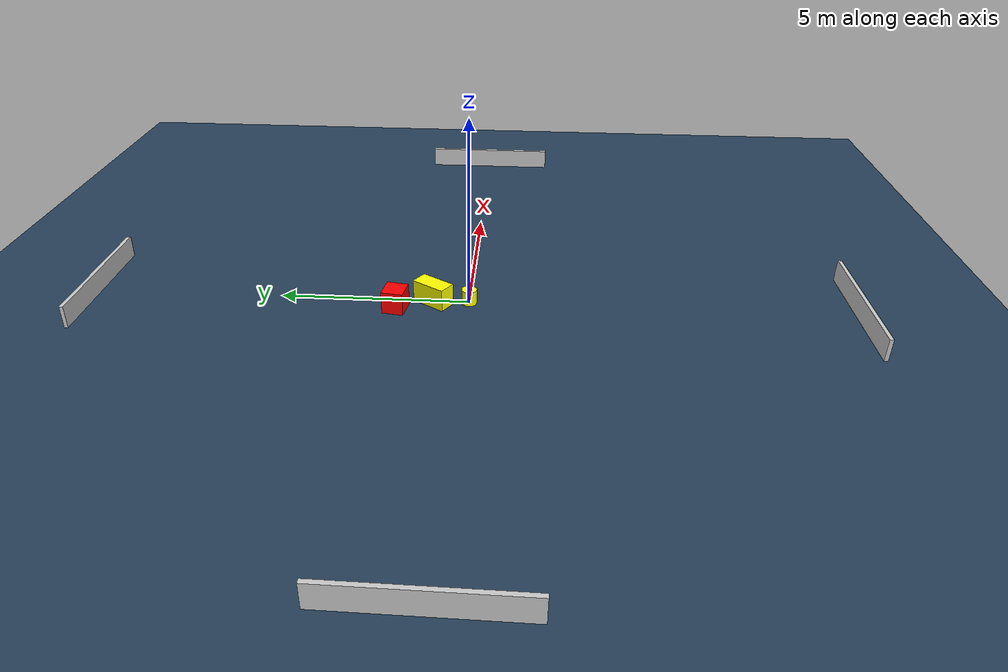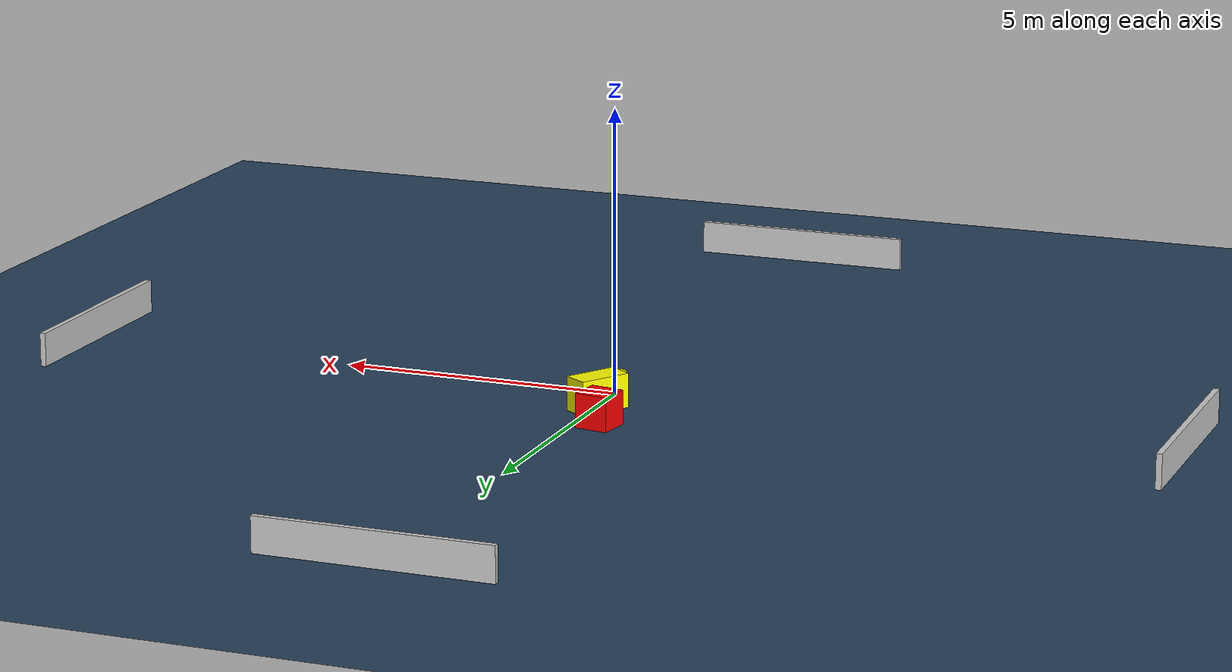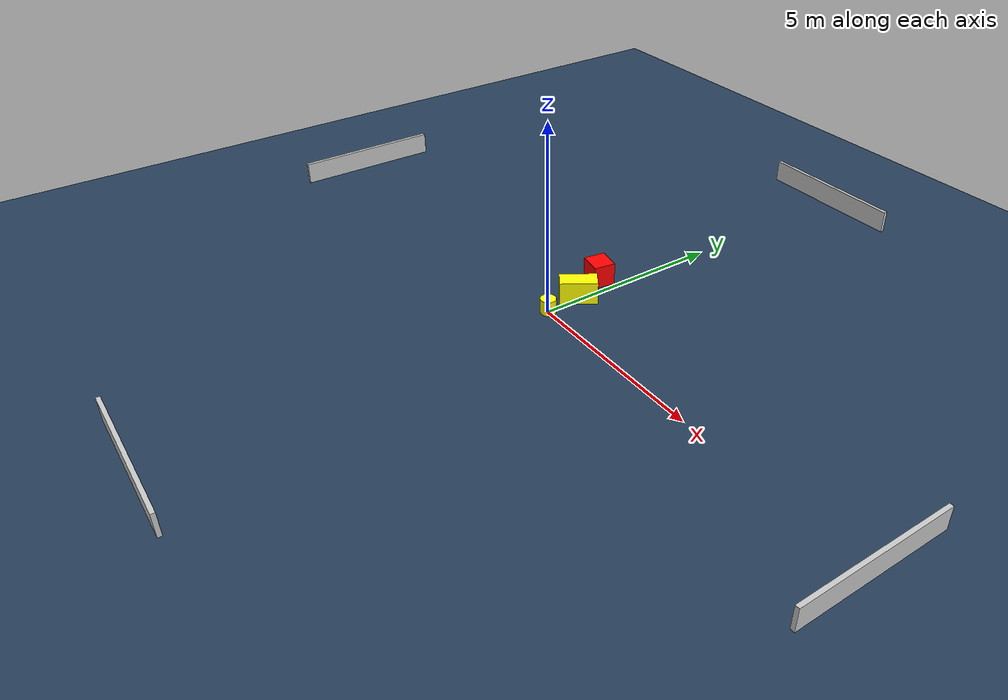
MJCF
<?xml version="1.0" ?>
<mujoco model="generated_environment">
  <option timestep="0.01" integrator="RK4" cone="elliptic"/>
  <default>
    <geom density="1"/>
  </default>
  <asset>
    <texture builtin="gradient" height="3072" name="skybox" rgb1="0.3 0.5 0.7" rgb2="0 0 0" type="skybox" width="512"/>
    <texture builtin="checker" height="300" name="groundplane" rgb1="0.2 0.3 0.4" rgb2="0.1 0.2 0.3" type="2d" width="300"/>
    <material name="groundplane" reflectance="0.2" texrepeat="5 5" texture="groundplane"/>
  </asset>
  <worldbody>
    <light dir="0 0 -1" directional="true" pos="0 0 1.5"/>
    <geom condim="3" friction="0.5 0.005 0.001" material="groundplane" name="floor" pos="0 0 0" size="0 0 0.05" type="plane"/>
    <body name="walls">
      <geom name="wall_1" condim="4" pos="-10.0 0.0 0.3" rgba="0.800000011920929 0.800000011920929 0.800000011920929 1.0" size="0.05 2.0 0.3" type="box"/>
      <geom name="wall_2" condim="4" pos="10.0 0.0 0.3" rgba="0.800000011920929 0.800000011920929 0.800000011920929 1.0" size="0.05 2.0 0.3" type="box"/>
      <geom name="wall_3" condim="4" pos="0.0 -10.0 0.3" rgba="0.800000011920929 0.800000011920929 0.800000011920929 1.0" size="2.0 0.05 0.3" type="box"/>
      <geom name="wall_4" condim="4" pos="0.0 10.0 0.3" rgba="0.800000011920929 0.800000011920929 0.800000011920929 1.0" size="2.0 0.05 0.3" type="box"/>
    </body>
    <body name="robot">
      <joint name="joint_x" type="slide" pos="0 0 0" axis="1 0 0"/>
      <joint name="joint_y" type="slide" pos="0 0 0" axis="0 1 0"/>
      <geom name="robot" type="cylinder" pos="0.0 0.0 0.2" size="0.2 0.2 0.0" mass="5.0" friction="1.0 0.005 0.0001" condim="4" rgba="1.0 1.0 0.0 1.0"/>
    </body>
    <body name="obstacle_1_movable">
      <geom name="obstacle_1_movable" condim="4" pos="-0.052634416110085715 0.9481517473081984 0.3" euler="0 0 147.30528276332015" friction="0.0 0.005 0.001" rgba="1.0 1.0 0.0 1.0" size="0.23246035590526157 0.4764476239390614 0.3" type="box" mass="0.1"/>
      <joint type="free"/>
    </body>
    <body name="obstacle_2_static">
      <geom name="obstacle_2_static" condim="4" pos="-0.44364999180696857 1.8947627052027305 0.3" euler="0 0 171.13577552980146" friction="0.0 0.005 0.001" rgba="1.0 0.0 0.0 1.0" size="0.2972085187522173 0.28388183320435667 0.3" type="box"/>
    </body>
  </worldbody>
  <actuator>
    <motor name="actuator_x" joint="joint_x" gear="1" ctrlrange="-1 1"/>
    <motor name="actuator_y" joint="joint_y" gear="1" ctrlrange="-1 1"/>
  </actuator>
</mujoco>
